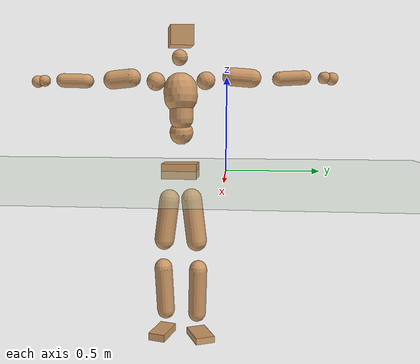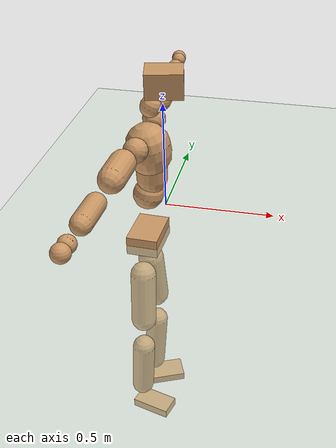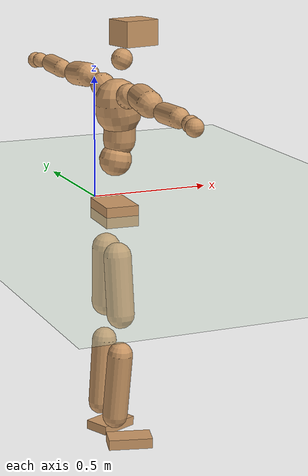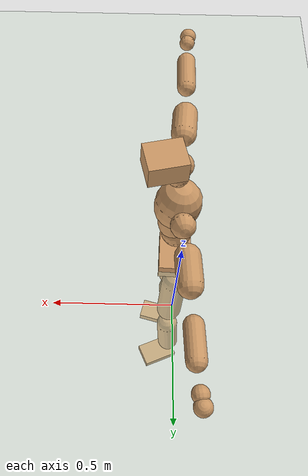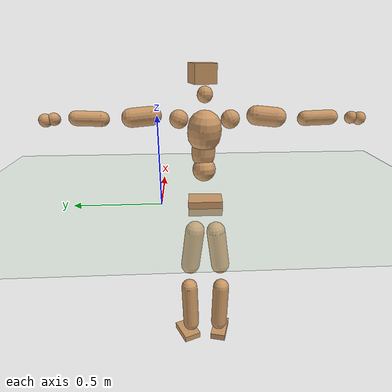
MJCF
<mujoco model="humanoid">
  <compiler coordinate="local" angle="radian"/>
  <default>
    <joint damping="0.0" armature="0.01" stiffness="0.0" limited="true"/>
    <geom conaffinity="1" condim="3" contype="7" margin="0.001" rgba="0.8 0.6 .4 1"/>
  </default>
  <asset>
    <texture type="skybox" builtin="gradient" rgb1=".4 .5 .6" rgb2="0 0 0" width="100" height="100"/>
    <texture builtin="flat" height="1278" mark="cross" markrgb="1 1 1" name="texgeom" random="0.01" rgb1="0.8 0.6 0.4" rgb2="0.8 0.6 0.4" type="cube" width="127"/>
    <texture builtin="checker" height="100" name="texplane" rgb1="0 0 0" rgb2="0.8 0.8 0.8" type="2d" width="100"/>
    <material name="MatPlane" reflectance="0.5" shininess="1" specular="1" texrepeat="60 60" texture="texplane"/>
    <material name="geom" texture="texgeom" texuniform="true"/>
  </asset>
  <worldbody>
    <light cutoff="100" diffuse="1 1 1" dir="-0 0 -1.3" directional="true" exponent="1" pos="0 0 1.3" specular=".1 .1 .1"/>
    <geom conaffinity="1" condim="3" name="floor" pos="0 0 0" rgba="0.8 0.9 0.8 1" size="100 100 .2" type="plane" material="MatPlane"/>
    <body name="Pelvis" pos="-0.0027 -0.2526 0.0045">
      <freejoint name="Pelvis"/>
      <geom type="box" contype="1" conaffinity="1" density="5359.374384" pos="-0.0128 0.0005 -0.0085" size="0.0674 0.0963 0.0416" quat="0.9998 0.0000 0.0000 -0.0194" name="Pelvis"/>
      <body name="L_Hip" pos="-0.0272 0.0511 -0.0834">
        <joint name="L_Hip_x" type="hinge" pos="0 0 0" axis="1 0 0" stiffness="1600" damping="160" armature="0.02" range="-180.0000 180.0000"/>
        <joint name="L_Hip_y" type="hinge" pos="0 0 0" axis="0 1 0" stiffness="1600" damping="160" armature="0.02" range="-180.0000 180.0000"/>
        <joint name="L_Hip_z" type="hinge" pos="0 0 0" axis="0 0 1" stiffness="1600" damping="160" armature="0.02" range="-180.0000 180.0000"/>
        <geom type="capsule" contype="1" conaffinity="1" density="2040.816327" size="0.0571" fromto="0.0033 0.0111 -0.0863 0.0127 0.0420 -0.3276" name="L_Hip"/>
        <body name="L_Knee" pos="0.016 0.0531 -0.414">
          <joint name="L_Knee_x" type="hinge" pos="0 0 0" axis="1 0 0" stiffness="1600" damping="160" armature="0.02" range="-180.0000 180.0000"/>
          <joint name="L_Knee_y" type="hinge" pos="0 0 0" axis="0 1 0" stiffness="1600" damping="160" armature="0.02" range="-180.0000 180.0000"/>
          <joint name="L_Knee_z" type="hinge" pos="0 0 0" axis="0 0 1" stiffness="1600" damping="160" armature="0.02" range="-180.0000 180.0000"/>
          <geom type="capsule" contype="1" conaffinity="1" density="1234.567901" size="0.0505" fromto="-0.0061 -0.0021 -0.0802 -0.0267 -0.0091 -0.3504" name="L_Knee"/>
          <body name="L_Ankle" pos="-0.0328 -0.0111 -0.4306">
            <joint name="L_Ankle_x" type="hinge" pos="0 0 0" axis="1 0 0" stiffness="1600" damping="160" armature="0.02" range="-180.0000 180.0000"/>
            <joint name="L_Ankle_y" type="hinge" pos="0 0 0" axis="0 1 0" stiffness="1600" damping="160" armature="0.02" range="-180.0000 180.0000"/>
            <joint name="L_Ankle_z" type="hinge" pos="0 0 0" axis="0 0 1" stiffness="1600" damping="160" armature="0.02" range="-180.0000 180.0000"/>
            <geom type="box" contype="1" conaffinity="1" density="999.999987" pos="0.0590 0.0257 -0.0311" size="0.0839 0.0548 0.0189" quat="0.9790 0.0000 0.0000 0.2039" name="L_Ankle"/>
            <body name="L_Toe" pos="0.118 0.0514 -0.0622">
              <joint name="L_Toe_x" type="hinge" pos="0 0 0" axis="1 0 0" stiffness="1000" damping="100" armature="0.02" range="-180.0000 180.0000"/>
              <joint name="L_Toe_y" type="hinge" pos="0 0 0" axis="0 1 0" stiffness="1000" damping="100" armature="0.02" range="-180.0000 180.0000"/>
              <joint name="L_Toe_z" type="hinge" pos="0 0 0" axis="0 0 1" stiffness="1000" damping="100" armature="0.02" range="-180.0000 180.0000"/>
              <geom type="box" contype="1" conaffinity="1" density="7135401.647308" pos="0.0000 0.0000 0.0340" size="0.001 0.0026 0.0011" quat="0.9782 0.0000 0.0000 0.2078" name="L_Toe"/>
            </body>
          </body>
        </body>
      </body>
      <body name="R_Hip" pos="-0.0263 -0.052 -0.0905">
        <joint name="R_Hip_x" type="hinge" pos="0 0 0" axis="1 0 0" stiffness="1600" damping="160" armature="0.02" range="-180.0000 180.0000"/>
        <joint name="R_Hip_y" type="hinge" pos="0 0 0" axis="0 1 0" stiffness="1600" damping="160" armature="0.02" range="-180.0000 180.0000"/>
        <joint name="R_Hip_z" type="hinge" pos="0 0 0" axis="0 0 1" stiffness="1600" damping="160" armature="0.02" range="-180.0000 180.0000"/>
        <geom type="capsule" contype="1" conaffinity="1" density="2040.816327" size="0.056" fromto="0.0005 -0.0109 -0.0853 0.0018 -0.0408 -0.3206" name="R_Hip"/>
        <body name="R_Knee" pos="0.0023 -0.0517 -0.4058">
          <joint name="R_Knee_x" type="hinge" pos="0 0 0" axis="1 0 0" stiffness="1600" damping="160" armature="0.02" range="-180.0000 180.0000"/>
          <joint name="R_Knee_y" type="hinge" pos="0 0 0" axis="0 1 0" stiffness="1600" damping="160" armature="0.02" range="-180.0000 180.0000"/>
          <joint name="R_Knee_z" type="hinge" pos="0 0 0" axis="0 0 1" stiffness="1600" damping="160" armature="0.02" range="-180.0000 180.0000"/>
          <geom type="capsule" contype="1" conaffinity="1" density="1234.567901" size="0.0508" fromto="-0.0058 0.0035 -0.0805 -0.0246 0.0149 -0.3436" name="R_Knee"/>
          <body name="R_Ankle" pos="-0.0304 0.0184 -0.4241">
            <joint name="R_Ankle_x" type="hinge" pos="0 0 0" axis="1 0 0" stiffness="1600" damping="160" armature="0.02" range="-180.0000 180.0000"/>
            <joint name="R_Ankle_y" type="hinge" pos="0 0 0" axis="0 1 0" stiffness="1600" damping="160" armature="0.02" range="-180.0000 180.0000"/>
            <joint name="R_Ankle_z" type="hinge" pos="0 0 0" axis="0 0 1" stiffness="1600" damping="160" armature="0.02" range="-180.0000 180.0000"/>
            <geom type="box" contype="1" conaffinity="1" density="999.999992" pos="0.0641 -0.0170 -0.0319" size="0.0896 0.0479 0.0209" quat="0.9916 0.0000 0.0000 -0.1291" name="R_Ankle"/>
            <body name="R_Toe" pos="0.1283 -0.034 -0.0639">
              <joint name="R_Toe_x" type="hinge" pos="0 0 0" axis="1 0 0" stiffness="1000" damping="100" armature="0.02" range="-180.0000 180.0000"/>
              <joint name="R_Toe_y" type="hinge" pos="0 0 0" axis="0 1 0" stiffness="1000" damping="100" armature="0.02" range="-180.0000 180.0000"/>
              <joint name="R_Toe_z" type="hinge" pos="0 0 0" axis="0 0 1" stiffness="1000" damping="100" armature="0.02" range="-180.0000 180.0000"/>
              <geom type="box" contype="1" conaffinity="1" density="8291821.449957" pos="0.0000 0.0000 0.0348" size="0.0009 0.0023 0.0012" quat="0.9928 0.0000 0.0000 -0.1201" name="R_Toe"/>
            </body>
          </body>
        </body>
      </body>
      <body name="Torso" pos="-0.0233 0.0038 0.1228">
        <joint name="Torso_x" type="hinge" pos="0 0 0" axis="1 0 0" stiffness="2000" damping="200" armature="0.02" range="-180.0000 180.0000"/>
        <joint name="Torso_y" type="hinge" pos="0 0 0" axis="0 1 0" stiffness="2000" damping="200" armature="0.02" range="-180.0000 180.0000"/>
        <joint name="Torso_z" type="hinge" pos="0 0 0" axis="0 0 1" stiffness="2000" damping="200" armature="0.02" range="-180.0000 180.0000"/>
        <geom type="capsule" contype="1" conaffinity="1" density="2040.816327" size="0.0646" fromto="0.0177 0.0026 0.0775 0.0181 0.0027 0.0794" name="Torso"/>
        <body name="Spine" pos="0.0358 0.0054 0.1569">
          <joint name="Spine_x" type="hinge" pos="0 0 0" axis="1 0 0" stiffness="2000" damping="200" armature="0.02" range="-180.0000 180.0000"/>
          <joint name="Spine_y" type="hinge" pos="0 0 0" axis="0 1 0" stiffness="2000" damping="200" armature="0.02" range="-180.0000 180.0000"/>
          <joint name="Spine_z" type="hinge" pos="0 0 0" axis="0 0 1" stiffness="2000" damping="200" armature="0.02" range="-180.0000 180.0000"/>
          <geom type="capsule" contype="1" conaffinity="1" density="2040.816327" size="0.0643" fromto="0.0015 -0.0014 0.0642 -0.0000 0.0000 -0.0016" name="Spine"/>
          <body name="Chest" pos="0.0015 -0.0014 0.0627">
            <joint name="Chest_x" type="hinge" pos="0 0 0" axis="1 0 0" stiffness="2000" damping="200" armature="0.02" range="-180.0000 180.0000"/>
            <joint name="Chest_y" type="hinge" pos="0 0 0" axis="0 1 0" stiffness="2000" damping="200" armature="0.02" range="-180.0000 180.0000"/>
            <joint name="Chest_z" type="hinge" pos="0 0 0" axis="0 0 1" stiffness="2000" damping="200" armature="0.02" range="-180.0000 180.0000"/>
            <geom type="capsule" contype="1" conaffinity="1" density="2040.816327" size="0.0913" fromto="-0.0114 -0.0053 0.0904 -0.0064 -0.0030 0.0510" name="Chest"/>
            <body name="Neck" pos="-0.0204 -0.0125 0.2072">
              <joint name="Neck_x" type="hinge" pos="0 0 0" axis="1 0 0" stiffness="1000" damping="100" armature="0.02" range="-180.0000 180.0000"/>
              <joint name="Neck_y" type="hinge" pos="0 0 0" axis="0 1 0" stiffness="1000" damping="100" armature="0.02" range="-180.0000 180.0000"/>
              <joint name="Neck_z" type="hinge" pos="0 0 0" axis="0 0 1" stiffness="1000" damping="100" armature="0.02" range="-180.0000 180.0000"/>
              <geom type="capsule" contype="1" conaffinity="1" density="1000" size="0.0419" fromto="0.0260 0.0050 0.0492 0.0269 0.0052 0.0510" name="Neck"/>
              <body name="Head" pos="0.0529 0.0102 0.1003">
                <joint name="Head_x" type="hinge" pos="0 0 0" axis="1 0 0" stiffness="1000" damping="100" armature="0.02" range="-180.0000 180.0000"/>
                <joint name="Head_y" type="hinge" pos="0 0 0" axis="0 1 0" stiffness="1000" damping="100" armature="0.02" range="-180.0000 180.0000"/>
                <joint name="Head_z" type="hinge" pos="0 0 0" axis="0 0 1" stiffness="1000" damping="100" armature="0.02" range="-180.0000 180.0000"/>
                <geom type="box" contype="1" conaffinity="1" density="2250.00019" pos="0.0275 0.0061 0.0511" size="0.0744 0.0599 0.0506" quat="0.9940 0.0000 0.0000 0.1092" name="Head"/>
              </body>
            </body>
            <body name="L_Thorax" pos="-0.0136 0.0725 0.11">
              <joint name="L_Thorax_x" type="hinge" pos="0 0 0" axis="1 0 0" stiffness="1000" damping="100" armature="0.02" range="-180.0000 180.0000"/>
              <joint name="L_Thorax_y" type="hinge" pos="0 0 0" axis="0 1 0" stiffness="1000" damping="100" armature="0.02" range="-180.0000 180.0000"/>
              <joint name="L_Thorax_z" type="hinge" pos="0 0 0" axis="0 0 1" stiffness="1000" damping="100" armature="0.02" range="-180.0000 180.0000"/>
              <geom type="capsule" contype="1" conaffinity="1" density="1000" size="0.0489" fromto="-0.0062 0.0580 0.0267 -0.0064 0.0598 0.0275" name="L_Thorax"/>
              <body name="L_Shoulder" pos="-0.0126 0.1178 0.0541">
                <joint name="L_Shoulder_x" type="hinge" pos="0 0 0" axis="1 0 0" stiffness="1000" damping="100" armature="0.02" range="-720.0000 720.0000"/>
                <joint name="L_Shoulder_y" type="hinge" pos="0 0 0" axis="0 1 0" stiffness="1000" damping="100" armature="0.02" range="-720.0000 720.0000"/>
                <joint name="L_Shoulder_z" type="hinge" pos="0 0 0" axis="0 0 1" stiffness="1000" damping="100" armature="0.02" range="-720.0000 720.0000"/>
                <geom type="capsule" contype="1" conaffinity="1" density="1000" size="0.0492" fromto="-0.0050 0.0788 -0.0063 -0.0119 0.1871 -0.0150" name="L_Shoulder"/>
                <body name="L_Elbow" pos="-0.017 0.2659 -0.0213">
                  <joint name="L_Elbow_x" type="hinge" pos="0 0 0" axis="1 0 0" stiffness="1000" damping="100" armature="0.02" range="-720.0000 720.0000"/>
                  <joint name="L_Elbow_y" type="hinge" pos="0 0 0" axis="0 1 0" stiffness="1000" damping="100" armature="0.02" range="-720.0000 720.0000"/>
                  <joint name="L_Elbow_z" type="hinge" pos="0 0 0" axis="0 0 1" stiffness="1000" damping="100" armature="0.02" range="-720.0000 720.0000"/>
                  <geom type="capsule" contype="1" conaffinity="1" density="1000" size="0.038" fromto="-0.0025 0.0679 0.0033 -0.0073 0.1957 0.0094" name="L_Elbow"/>
                  <body name="L_Wrist" pos="-0.0099 0.2636 0.0127">
                    <joint name="L_Wrist_x" type="hinge" pos="0 0 0" axis="1 0 0" stiffness="600" damping="60" armature="0.02" range="-180.0000 180.0000"/>
                    <joint name="L_Wrist_y" type="hinge" pos="0 0 0" axis="0 1 0" stiffness="600" damping="60" armature="0.02" range="-180.0000 180.0000"/>
                    <joint name="L_Wrist_z" type="hinge" pos="0 0 0" axis="0 0 1" stiffness="600" damping="60" armature="0.02" range="-180.0000 180.0000"/>
                    <geom type="capsule" contype="1" conaffinity="1" density="1000" size="0.0317" fromto="-0.0073 0.0397 -0.0049 -0.0076 0.0417 -0.0052" name="L_Wrist"/>
                    <body name="L_Hand" pos="-0.0149 0.0814 -0.0101">
                      <joint name="L_Hand_x" type="hinge" pos="0 0 0" axis="1 0 0" stiffness="600" damping="60" armature="0.02" range="-180.0000 180.0000"/>
                      <joint name="L_Hand_y" type="hinge" pos="0 0 0" axis="0 1 0" stiffness="600" damping="60" armature="0.02" range="-180.0000 180.0000"/>
                      <joint name="L_Hand_z" type="hinge" pos="0 0 0" axis="0 0 1" stiffness="600" damping="60" armature="0.02" range="-180.0000 180.0000"/>
                      <geom type="sphere" contype="1" conaffinity="1" density="1000" size="0.0334" pos="0.0000 0.0000 0.0000" name="L_Hand"/>
                    </body>
                  </body>
                </body>
              </body>
            </body>
            <body name="R_Thorax" pos="-0.0194 -0.0849 0.1071">
              <joint name="R_Thorax_x" type="hinge" pos="0 0 0" axis="1 0 0" stiffness="1000" damping="100" armature="0.02" range="-180.0000 180.0000"/>
              <joint name="R_Thorax_y" type="hinge" pos="0 0 0" axis="0 1 0" stiffness="1000" damping="100" armature="0.02" range="-180.0000 180.0000"/>
              <joint name="R_Thorax_z" type="hinge" pos="0 0 0" axis="0 0 1" stiffness="1000" damping="100" armature="0.02" range="-180.0000 180.0000"/>
              <geom type="capsule" contype="1" conaffinity="1" density="1000" size="0.0494" fromto="-0.0019 -0.0548 0.0270 -0.0020 -0.0566 0.0279" name="R_Thorax"/>
              <body name="R_Shoulder" pos="-0.004 -0.1114 0.0549">
                <joint name="R_Shoulder_x" type="hinge" pos="0 0 0" axis="1 0 0" stiffness="1000" damping="100" armature="0.02" range="-720.0000 720.0000"/>
                <joint name="R_Shoulder_y" type="hinge" pos="0 0 0" axis="0 1 0" stiffness="1000" damping="100" armature="0.02" range="-720.0000 720.0000"/>
                <joint name="R_Shoulder_z" type="hinge" pos="0 0 0" axis="0 0 1" stiffness="1000" damping="100" armature="0.02" range="-720.0000 720.0000"/>
                <geom type="capsule" contype="1" conaffinity="1" density="1000" size="0.0508" fromto="-0.0070 -0.0802 -0.0074 -0.0163 -0.1876 -0.0173" name="R_Shoulder"/>
                <body name="R_Elbow" pos="-0.0233 -0.2678 -0.0247">
                  <joint name="R_Elbow_x" type="hinge" pos="0 0 0" axis="1 0 0" stiffness="1000" damping="100" armature="0.02" range="-720.0000 720.0000"/>
                  <joint name="R_Elbow_y" type="hinge" pos="0 0 0" axis="0 1 0" stiffness="1000" damping="100" armature="0.02" range="-720.0000 720.0000"/>
                  <joint name="R_Elbow_z" type="hinge" pos="0 0 0" axis="0 0 1" stiffness="1000" damping="100" armature="0.02" range="-720.0000 720.0000"/>
                  <geom type="capsule" contype="1" conaffinity="1" density="1000" size="0.0385" fromto="-0.0014 -0.0685 0.0026 -0.0042 -0.2041 0.0076" name="R_Elbow"/>
                  <body name="R_Wrist" pos="-0.0056 -0.2725 0.0102">
                    <joint name="R_Wrist_x" type="hinge" pos="0 0 0" axis="1 0 0" stiffness="600" damping="60" armature="0.02" range="-180.0000 180.0000"/>
                    <joint name="R_Wrist_y" type="hinge" pos="0 0 0" axis="0 1 0" stiffness="600" damping="60" armature="0.02" range="-180.0000 180.0000"/>
                    <joint name="R_Wrist_z" type="hinge" pos="0 0 0" axis="0 0 1" stiffness="600" damping="60" armature="0.02" range="-180.0000 180.0000"/>
                    <geom type="capsule" contype="1" conaffinity="1" density="1000" size="0.032" fromto="-0.0049 -0.0408 -0.0038 -0.0051 -0.0428 -0.0040" name="R_Wrist"/>
                    <body name="R_Hand" pos="-0.0101 -0.0836 -0.0078">
                      <joint name="R_Hand_x" type="hinge" pos="0 0 0" axis="1 0 0" stiffness="600" damping="60" armature="0.02" range="-180.0000 180.0000"/>
                      <joint name="R_Hand_y" type="hinge" pos="0 0 0" axis="0 1 0" stiffness="600" damping="60" armature="0.02" range="-180.0000 180.0000"/>
                      <joint name="R_Hand_z" type="hinge" pos="0 0 0" axis="0 0 1" stiffness="600" damping="60" armature="0.02" range="-180.0000 180.0000"/>
                      <geom type="sphere" contype="1" conaffinity="1" density="1000" size="0.0338" pos="0.0000 0.0000 0.0000" name="R_Hand"/>
                    </body>
                  </body>
                </body>
              </body>
            </body>
          </body>
        </body>
      </body>
    </body>
  </worldbody>
  <actuator>
    <motor name="L_Hip_x" joint="L_Hip_x" gear="500"/>
    <motor name="L_Hip_y" joint="L_Hip_y" gear="500"/>
    <motor name="L_Hip_z" joint="L_Hip_z" gear="500"/>
    <motor name="L_Knee_x" joint="L_Knee_x" gear="500"/>
    <motor name="L_Knee_y" joint="L_Knee_y" gear="500"/>
    <motor name="L_Knee_z" joint="L_Knee_z" gear="500"/>
    <motor name="L_Ankle_x" joint="L_Ankle_x" gear="500"/>
    <motor name="L_Ankle_y" joint="L_Ankle_y" gear="500"/>
    <motor name="L_Ankle_z" joint="L_Ankle_z" gear="500"/>
    <motor name="L_Toe_x" joint="L_Toe_x" gear="500"/>
    <motor name="L_Toe_y" joint="L_Toe_y" gear="500"/>
    <motor name="L_Toe_z" joint="L_Toe_z" gear="500"/>
    <motor name="R_Hip_x" joint="R_Hip_x" gear="500"/>
    <motor name="R_Hip_y" joint="R_Hip_y" gear="500"/>
    <motor name="R_Hip_z" joint="R_Hip_z" gear="500"/>
    <motor name="R_Knee_x" joint="R_Knee_x" gear="500"/>
    <motor name="R_Knee_y" joint="R_Knee_y" gear="500"/>
    <motor name="R_Knee_z" joint="R_Knee_z" gear="500"/>
    <motor name="R_Ankle_x" joint="R_Ankle_x" gear="500"/>
    <motor name="R_Ankle_y" joint="R_Ankle_y" gear="500"/>
    <motor name="R_Ankle_z" joint="R_Ankle_z" gear="500"/>
    <motor name="R_Toe_x" joint="R_Toe_x" gear="500"/>
    <motor name="R_Toe_y" joint="R_Toe_y" gear="500"/>
    <motor name="R_Toe_z" joint="R_Toe_z" gear="500"/>
    <motor name="Torso_x" joint="Torso_x" gear="500"/>
    <motor name="Torso_y" joint="Torso_y" gear="500"/>
    <motor name="Torso_z" joint="Torso_z" gear="500"/>
    <motor name="Spine_x" joint="Spine_x" gear="500"/>
    <motor name="Spine_y" joint="Spine_y" gear="500"/>
    <motor name="Spine_z" joint="Spine_z" gear="500"/>
    <motor name="Chest_x" joint="Chest_x" gear="500"/>
    <motor name="Chest_y" joint="Chest_y" gear="500"/>
    <motor name="Chest_z" joint="Chest_z" gear="500"/>
    <motor name="Neck_x" joint="Neck_x" gear="500"/>
    <motor name="Neck_y" joint="Neck_y" gear="500"/>
    <motor name="Neck_z" joint="Neck_z" gear="500"/>
    <motor name="Head_x" joint="Head_x" gear="500"/>
    <motor name="Head_y" joint="Head_y" gear="500"/>
    <motor name="Head_z" joint="Head_z" gear="500"/>
    <motor name="L_Thorax_x" joint="L_Thorax_x" gear="500"/>
    <motor name="L_Thorax_y" joint="L_Thorax_y" gear="500"/>
    <motor name="L_Thorax_z" joint="L_Thorax_z" gear="500"/>
    <motor name="L_Shoulder_x" joint="L_Shoulder_x" gear="500"/>
    <motor name="L_Shoulder_y" joint="L_Shoulder_y" gear="500"/>
    <motor name="L_Shoulder_z" joint="L_Shoulder_z" gear="500"/>
    <motor name="L_Elbow_x" joint="L_Elbow_x" gear="500"/>
    <motor name="L_Elbow_y" joint="L_Elbow_y" gear="500"/>
    <motor name="L_Elbow_z" joint="L_Elbow_z" gear="500"/>
    <motor name="L_Wrist_x" joint="L_Wrist_x" gear="500"/>
    <motor name="L_Wrist_y" joint="L_Wrist_y" gear="500"/>
    <motor name="L_Wrist_z" joint="L_Wrist_z" gear="500"/>
    <motor name="L_Hand_x" joint="L_Hand_x" gear="500"/>
    <motor name="L_Hand_y" joint="L_Hand_y" gear="500"/>
    <motor name="L_Hand_z" joint="L_Hand_z" gear="500"/>
    <motor name="R_Thorax_x" joint="R_Thorax_x" gear="500"/>
    <motor name="R_Thorax_y" joint="R_Thorax_y" gear="500"/>
    <motor name="R_Thorax_z" joint="R_Thorax_z" gear="500"/>
    <motor name="R_Shoulder_x" joint="R_Shoulder_x" gear="500"/>
    <motor name="R_Shoulder_y" joint="R_Shoulder_y" gear="500"/>
    <motor name="R_Shoulder_z" joint="R_Shoulder_z" gear="500"/>
    <motor name="R_Elbow_x" joint="R_Elbow_x" gear="500"/>
    <motor name="R_Elbow_y" joint="R_Elbow_y" gear="500"/>
    <motor name="R_Elbow_z" joint="R_Elbow_z" gear="500"/>
    <motor name="R_Wrist_x" joint="R_Wrist_x" gear="500"/>
    <motor name="R_Wrist_y" joint="R_Wrist_y" gear="500"/>
    <motor name="R_Wrist_z" joint="R_Wrist_z" gear="500"/>
    <motor name="R_Hand_x" joint="R_Hand_x" gear="500"/>
    <motor name="R_Hand_y" joint="R_Hand_y" gear="500"/>
    <motor name="R_Hand_z" joint="R_Hand_z" gear="500"/>
  </actuator>
  <contact>
    <exclude body1="Torso" body2="Chest"/>
    <exclude body1="Head" body2="Chest"/>
    <exclude body1="R_Knee" body2="R_Toe"/>
    <exclude body1="R_Knee" body2="L_Ankle"/>
    <exclude body1="R_Knee" body2="L_Toe"/>
    <exclude body1="L_Knee" body2="L_Toe"/>
    <exclude body1="L_Knee" body2="R_Ankle"/>
    <exclude body1="L_Knee" body2="R_Toe"/>
    <exclude body1="L_Shoulder" body2="Chest"/>
    <exclude body1="R_Shoulder" body2="Chest"/>
  </contact>
  <sensor/>
  <size njmax="700" nconmax="700"/>
</mujoco>
